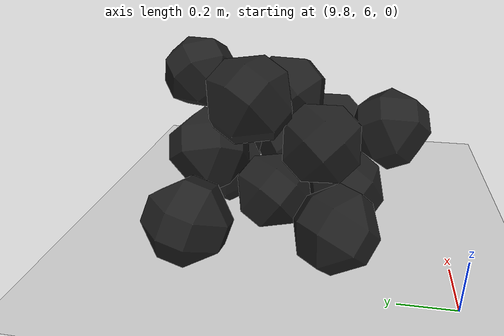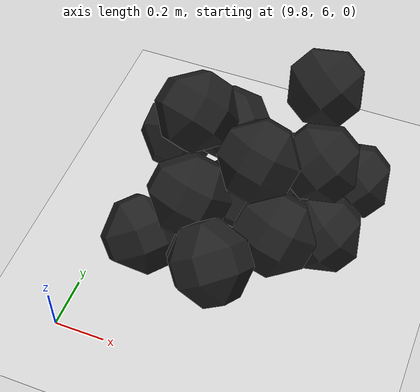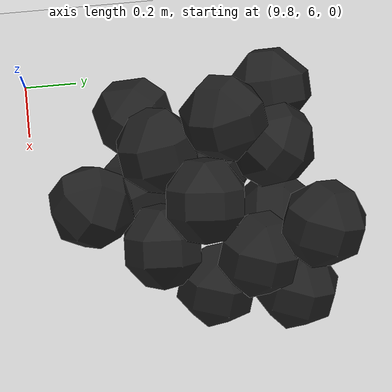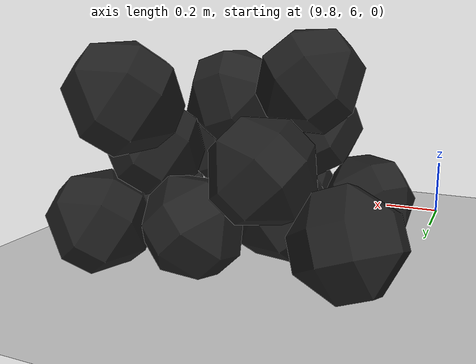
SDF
<sdf version="1.7">
 <world name="default">
  <model name="ground_plane">
   <static>1</static>
   <link name="link">
    <collision name="collision">
     <geometry><plane><normal>0 0 1</normal><size>100 100</size></plane></geometry>
     <surface><friction><ode><mu>100</mu><mu2>50</mu2></ode></friction></surface>
    </collision>
    <visual name="visual">
     <cast_shadows>0</cast_shadows>
     <geometry><plane><normal>0 0 1</normal><size>100 100</size></plane></geometry>
     <material>
      <script><uri>file://media/materials/scripts/gazebo.material</uri><name>Gazebo/Grey</name></script>
     </material>
    </visual>
   </link>
  </model>
  <model name="haoduomiantiaa_1">
   <link name="link_0">
    <inertial>
     <mass>0.2</mass>
     <inertia>
      <ixx>0.166667</ixx>
      <ixy>0</ixy>
      <ixz>0</ixz>
      <iyy>0.166667</iyy>
      <iyz>0</iyz>
      <izz>0.166667</izz>
     </inertia>
    </inertial>
    <visual name="visual">
     <geometry>
      <mesh>
       <uri>/home/lihaoyang/catkin_ws/src/pudong_gazebo/world/stl/haoduomianti.stl</uri>
       <scale>1 1 1</scale>
      </mesh>
     </geometry>
     <material>
      <lighting>1</lighting>
      <script><uri>file://media/materials/scripts/gazebo.material</uri><name>Gazebo/Black</name></script>
      <shader type="pixel"><normal_map>__default__</normal_map></shader>
      <ambient>0.3 0.3 0.3 1</ambient>
      <diffuse>0.7 0.7 0.7 1</diffuse>
      <specular>0.01 0.01 0.01 1</specular>
      <emissive>0 0 0 1</emissive>
     </material>
    </visual>
    <collision name="collision">
     <geometry>
      <mesh>
       <uri>/home/lihaoyang/catkin_ws/src/pudong_gazebo/world/stl/haoduomianti.stl</uri>
       <scale>1 1 1</scale>
      </mesh>
     </geometry>
     <surface>
      <friction>
       <ode><mu>1</mu><mu2>1</mu2><fdir1>0 0 0</fdir1><slip1>0</slip1><slip2>0</slip2></ode>
       <torsional>
        <coefficient>1</coefficient>
        <patch_radius>0</patch_radius>
        <surface_radius>0</surface_radius>
        <use_patch_radius>1</use_patch_radius>
        <ode><slip>0</slip></ode>
       </torsional>
      </friction>
      <bounce><restitution_coefficient>0</restitution_coefficient><threshold>1e+06</threshold></bounce>
      <contact>
       <collide_without_contact>0</collide_without_contact>
       <collide_without_contact_bitmask>1</collide_without_contact_bitmask>
       <collide_bitmask>1</collide_bitmask>
       <ode>
        <soft_cfm>0</soft_cfm>
        <soft_erp>0.2</soft_erp>
        <kp>1e+13</kp>
        <kd>1</kd>
        <max_vel>0.01</max_vel>
        <min_depth>0</min_depth>
       </ode>
       <bullet>
        <split_impulse>1</split_impulse>
        <split_impulse_penetration_threshold>-0.01</split_impulse_penetration_threshold>
        <soft_cfm>0</soft_cfm>
        <soft_erp>0.2</soft_erp>
        <kp>1e+13</kp>
        <kd>1</kd>
       </bullet>
      </contact>
     </surface>
    </collision>
   </link>
   <static>0</static>
   <pose>10.6585 6.68021 -0.115759 0.785362 -0.615601 0.746121</pose>
  </model>
  <model name="haoduomiantiaa_7">
   <link name="link_0">
    <inertial>
     <mass>0.2</mass>
     <inertia>
      <ixx>0.166667</ixx>
      <ixy>0</ixy>
      <ixz>0</ixz>
      <iyy>0.166667</iyy>
      <iyz>0</iyz>
      <izz>0.166667</izz>
     </inertia>
    </inertial>
    <visual name="visual">
     <geometry>
      <mesh>
       <uri>/home/lihaoyang/catkin_ws/src/pudong_gazebo/world/stl/haoduomianti.stl</uri>
       <scale>1 1 1</scale>
      </mesh>
     </geometry>
     <material>
      <lighting>1</lighting>
      <script><uri>file://media/materials/scripts/gazebo.material</uri><name>Gazebo/Black</name></script>
      <shader type="pixel"><normal_map>__default__</normal_map></shader>
      <ambient>0.3 0.3 0.3 1</ambient>
      <diffuse>0.7 0.7 0.7 1</diffuse>
      <specular>0.01 0.01 0.01 1</specular>
      <emissive>0 0 0 1</emissive>
     </material>
    </visual>
    <collision name="collision">
     <geometry>
      <mesh>
       <uri>/home/lihaoyang/catkin_ws/src/pudong_gazebo/world/stl/haoduomianti.stl</uri>
       <scale>1 1 1</scale>
      </mesh>
     </geometry>
     <surface>
      <friction>
       <ode><mu>1</mu><mu2>1</mu2><fdir1>0 0 0</fdir1><slip1>0</slip1><slip2>0</slip2></ode>
       <torsional>
        <coefficient>1</coefficient>
        <patch_radius>0</patch_radius>
        <surface_radius>0</surface_radius>
        <use_patch_radius>1</use_patch_radius>
        <ode><slip>0</slip></ode>
       </torsional>
      </friction>
      <bounce><restitution_coefficient>0</restitution_coefficient><threshold>1e+06</threshold></bounce>
      <contact>
       <collide_without_contact>0</collide_without_contact>
       <collide_without_contact_bitmask>1</collide_without_contact_bitmask>
       <collide_bitmask>1</collide_bitmask>
       <ode>
        <soft_cfm>0</soft_cfm>
        <soft_erp>0.2</soft_erp>
        <kp>1e+13</kp>
        <kd>1</kd>
        <max_vel>0.01</max_vel>
        <min_depth>0</min_depth>
       </ode>
       <bullet>
        <split_impulse>1</split_impulse>
        <split_impulse_penetration_threshold>-0.01</split_impulse_penetration_threshold>
        <soft_cfm>0</soft_cfm>
        <soft_erp>0.2</soft_erp>
        <kp>1e+13</kp>
        <kd>1</kd>
       </bullet>
      </contact>
     </surface>
    </collision>
   </link>
   <static>0</static>
   <pose>10.6943 6.98169 -0.115473 0.78544 -0.614761 -1.40075</pose>
  </model>
  <model name="haoduomiantiaa_13">
   <link name="link_0">
    <inertial>
     <mass>0.2</mass>
     <inertia>
      <ixx>0.166667</ixx>
      <ixy>0</ixy>
      <ixz>0</ixz>
      <iyy>0.166667</iyy>
      <iyz>0</iyz>
      <izz>0.166667</izz>
     </inertia>
    </inertial>
    <visual name="visual">
     <geometry>
      <mesh>
       <uri>/home/lihaoyang/catkin_ws/src/pudong_gazebo/world/stl/haoduomianti.stl</uri>
       <scale>1 1 1</scale>
      </mesh>
     </geometry>
     <material>
      <lighting>1</lighting>
      <script><uri>file://media/materials/scripts/gazebo.material</uri><name>Gazebo/Black</name></script>
      <shader type="pixel"><normal_map>__default__</normal_map></shader>
      <ambient>0.3 0.3 0.3 1</ambient>
      <diffuse>0.7 0.7 0.7 1</diffuse>
      <specular>0.01 0.01 0.01 1</specular>
      <emissive>0 0 0 1</emissive>
     </material>
    </visual>
    <collision name="collision">
     <geometry>
      <mesh>
       <uri>/home/lihaoyang/catkin_ws/src/pudong_gazebo/world/stl/haoduomianti.stl</uri>
       <scale>1 1 1</scale>
      </mesh>
     </geometry>
     <surface>
      <friction>
       <ode><mu>1</mu><mu2>1</mu2><fdir1>0 0 0</fdir1><slip1>0</slip1><slip2>0</slip2></ode>
       <torsional>
        <coefficient>1</coefficient>
        <patch_radius>0</patch_radius>
        <surface_radius>0</surface_radius>
        <use_patch_radius>1</use_patch_radius>
        <ode><slip>0</slip></ode>
       </torsional>
      </friction>
      <bounce><restitution_coefficient>0</restitution_coefficient><threshold>1e+06</threshold></bounce>
      <contact>
       <collide_without_contact>0</collide_without_contact>
       <collide_without_contact_bitmask>1</collide_without_contact_bitmask>
       <collide_bitmask>1</collide_bitmask>
       <ode>
        <soft_cfm>0</soft_cfm>
        <soft_erp>0.2</soft_erp>
        <kp>1e+13</kp>
        <kd>1</kd>
        <max_vel>0.01</max_vel>
        <min_depth>0</min_depth>
       </ode>
       <bullet>
        <split_impulse>1</split_impulse>
        <split_impulse_penetration_threshold>-0.01</split_impulse_penetration_threshold>
        <soft_cfm>0</soft_cfm>
        <soft_erp>0.2</soft_erp>
        <kp>1e+13</kp>
        <kd>1</kd>
       </bullet>
      </contact>
     </surface>
    </collision>
   </link>
   <static>0</static>
   <pose>10.385 6.82157 -0.088707 1.29906 -0.76671 -3.09241</pose>
  </model>
  <model name="haoduomiantiaa_15">
   <link name="link_0">
    <inertial>
     <mass>0.2</mass>
     <inertia>
      <ixx>0.166667</ixx>
      <ixy>0</ixy>
      <ixz>0</ixz>
      <iyy>0.166667</iyy>
      <iyz>0</iyz>
      <izz>0.166667</izz>
     </inertia>
    </inertial>
    <visual name="visual">
     <geometry>
      <mesh>
       <uri>/home/lihaoyang/catkin_ws/src/pudong_gazebo/world/stl/haoduomianti.stl</uri>
       <scale>1 1 1</scale>
      </mesh>
     </geometry>
     <material>
      <lighting>1</lighting>
      <script><uri>file://media/materials/scripts/gazebo.material</uri><name>Gazebo/Black</name></script>
      <shader type="pixel"><normal_map>__default__</normal_map></shader>
      <ambient>0.3 0.3 0.3 1</ambient>
      <diffuse>0.7 0.7 0.7 1</diffuse>
      <specular>0.01 0.01 0.01 1</specular>
      <emissive>0 0 0 1</emissive>
     </material>
    </visual>
    <collision name="collision">
     <geometry>
      <mesh>
       <uri>/home/lihaoyang/catkin_ws/src/pudong_gazebo/world/stl/haoduomianti.stl</uri>
       <scale>1 1 1</scale>
      </mesh>
     </geometry>
     <surface>
      <friction>
       <ode><mu>1</mu><mu2>1</mu2><fdir1>0 0 0</fdir1><slip1>0</slip1><slip2>0</slip2></ode>
       <torsional>
        <coefficient>1</coefficient>
        <patch_radius>0</patch_radius>
        <surface_radius>0</surface_radius>
        <use_patch_radius>1</use_patch_radius>
        <ode><slip>0</slip></ode>
       </torsional>
      </friction>
      <bounce><restitution_coefficient>0</restitution_coefficient><threshold>1e+06</threshold></bounce>
      <contact>
       <collide_without_contact>0</collide_without_contact>
       <collide_without_contact_bitmask>1</collide_without_contact_bitmask>
       <collide_bitmask>1</collide_bitmask>
       <ode>
        <soft_cfm>0</soft_cfm>
        <soft_erp>0.2</soft_erp>
        <kp>1e+13</kp>
        <kd>1</kd>
        <max_vel>0.01</max_vel>
        <min_depth>0</min_depth>
       </ode>
       <bullet>
        <split_impulse>1</split_impulse>
        <split_impulse_penetration_threshold>-0.01</split_impulse_penetration_threshold>
        <soft_cfm>0</soft_cfm>
        <soft_erp>0.2</soft_erp>
        <kp>1e+13</kp>
        <kd>1</kd>
       </bullet>
      </contact>
     </surface>
    </collision>
   </link>
   <static>0</static>
   <pose>10.5889 6.84123 0.108758 0.77447 -0.630052 0.728351</pose>
  </model>
  <model name="haoduomiantiaa_33">
   <link name="link_0">
    <inertial>
     <mass>0.2</mass>
     <inertia>
      <ixx>0.166667</ixx>
      <ixy>0</ixy>
      <ixz>0</ixz>
      <iyy>0.166667</iyy>
      <iyz>0</iyz>
      <izz>0.166667</izz>
     </inertia>
    </inertial>
    <visual name="visual">
     <geometry>
      <mesh>
       <uri>/home/lihaoyang/catkin_ws/src/pudong_gazebo/world/stl/haoduomianti.stl</uri>
       <scale>1 1 1</scale>
      </mesh>
     </geometry>
     <material>
      <lighting>1</lighting>
      <script><uri>file://media/materials/scripts/gazebo.material</uri><name>Gazebo/Black</name></script>
      <shader type="pixel"><normal_map>__default__</normal_map></shader>
      <ambient>0.3 0.3 0.3 1</ambient>
      <diffuse>0.7 0.7 0.7 1</diffuse>
      <specular>0.01 0.01 0.01 1</specular>
      <emissive>0 0 0 1</emissive>
     </material>
    </visual>
    <collision name="collision">
     <geometry>
      <mesh>
       <uri>/home/lihaoyang/catkin_ws/src/pudong_gazebo/world/stl/haoduomianti.stl</uri>
       <scale>1 1 1</scale>
      </mesh>
     </geometry>
     <surface>
      <friction>
       <ode><mu>1</mu><mu2>1</mu2><fdir1>0 0 0</fdir1><slip1>0</slip1><slip2>0</slip2></ode>
       <torsional>
        <coefficient>1</coefficient>
        <patch_radius>0</patch_radius>
        <surface_radius>0</surface_radius>
        <use_patch_radius>1</use_patch_radius>
        <ode><slip>0</slip></ode>
       </torsional>
      </friction>
      <bounce><restitution_coefficient>0</restitution_coefficient><threshold>1e+06</threshold></bounce>
      <contact>
       <collide_without_contact>0</collide_without_contact>
       <collide_without_contact_bitmask>1</collide_without_contact_bitmask>
       <collide_bitmask>1</collide_bitmask>
       <ode>
        <soft_cfm>0</soft_cfm>
        <soft_erp>0.2</soft_erp>
        <kp>1e+13</kp>
        <kd>1</kd>
        <max_vel>0.01</max_vel>
        <min_depth>0</min_depth>
       </ode>
       <bullet>
        <split_impulse>1</split_impulse>
        <split_impulse_penetration_threshold>-0.01</split_impulse_penetration_threshold>
        <soft_cfm>0</soft_cfm>
        <soft_erp>0.2</soft_erp>
        <kp>1e+13</kp>
        <kd>1</kd>
       </bullet>
      </contact>
     </surface>
    </collision>
   </link>
   <static>0</static>
   <pose>10.2142 6.68788 -0.115193 0.77826 -0.61882 1.39041</pose>
  </model>
  <model name="haoduomiantiaa_34">
   <link name="link_0">
    <inertial>
     <mass>0.2</mass>
     <inertia>
      <ixx>0.166667</ixx>
      <ixy>0</ixy>
      <ixz>0</ixz>
      <iyy>0.166667</iyy>
      <iyz>0</iyz>
      <izz>0.166667</izz>
     </inertia>
    </inertial>
    <visual name="visual">
     <geometry>
      <mesh>
       <uri>/home/lihaoyang/catkin_ws/src/pudong_gazebo/world/stl/haoduomianti.stl</uri>
       <scale>1 1 1</scale>
      </mesh>
     </geometry>
     <material>
      <lighting>1</lighting>
      <script><uri>file://media/materials/scripts/gazebo.material</uri><name>Gazebo/Black</name></script>
      <shader type="pixel"><normal_map>__default__</normal_map></shader>
      <ambient>0.3 0.3 0.3 1</ambient>
      <diffuse>0.7 0.7 0.7 1</diffuse>
      <specular>0.01 0.01 0.01 1</specular>
      <emissive>0 0 0 1</emissive>
     </material>
    </visual>
    <collision name="collision">
     <geometry>
      <mesh>
       <uri>/home/lihaoyang/catkin_ws/src/pudong_gazebo/world/stl/haoduomianti.stl</uri>
       <scale>1 1 1</scale>
      </mesh>
     </geometry>
     <surface>
      <friction>
       <ode><mu>1</mu><mu2>1</mu2><fdir1>0 0 0</fdir1><slip1>0</slip1><slip2>0</slip2></ode>
       <torsional>
        <coefficient>1</coefficient>
        <patch_radius>0</patch_radius>
        <surface_radius>0</surface_radius>
        <use_patch_radius>1</use_patch_radius>
        <ode><slip>0</slip></ode>
       </torsional>
      </friction>
      <bounce><restitution_coefficient>0</restitution_coefficient><threshold>1e+06</threshold></bounce>
      <contact>
       <collide_without_contact>0</collide_without_contact>
       <collide_without_contact_bitmask>1</collide_without_contact_bitmask>
       <collide_bitmask>1</collide_bitmask>
       <ode>
        <soft_cfm>0</soft_cfm>
        <soft_erp>0.2</soft_erp>
        <kp>1e+13</kp>
        <kd>1</kd>
        <max_vel>0.01</max_vel>
        <min_depth>0</min_depth>
       </ode>
       <bullet>
        <split_impulse>1</split_impulse>
        <split_impulse_penetration_threshold>-0.01</split_impulse_penetration_threshold>
        <soft_cfm>0</soft_cfm>
        <soft_erp>0.2</soft_erp>
        <kp>1e+13</kp>
        <kd>1</kd>
       </bullet>
      </contact>
     </surface>
    </collision>
   </link>
   <static>0</static>
   <pose>10.2788 6.39914 -0.115408 0.783199 -0.616509 -0.706646</pose>
  </model>
  <model name="haoduomiantiaa_35">
   <link name="link_0">
    <inertial>
     <mass>0.2</mass>
     <inertia>
      <ixx>0.166667</ixx>
      <ixy>0</ixy>
      <ixz>0</ixz>
      <iyy>0.166667</iyy>
      <iyz>0</iyz>
      <izz>0.166667</izz>
     </inertia>
    </inertial>
    <visual name="visual">
     <geometry>
      <mesh>
       <uri>/home/lihaoyang/catkin_ws/src/pudong_gazebo/world/stl/haoduomianti.stl</uri>
       <scale>1 1 1</scale>
      </mesh>
     </geometry>
     <material>
      <lighting>1</lighting>
      <script><uri>file://media/materials/scripts/gazebo.material</uri><name>Gazebo/Black</name></script>
      <shader type="pixel"><normal_map>__default__</normal_map></shader>
      <ambient>0.3 0.3 0.3 1</ambient>
      <diffuse>0.7 0.7 0.7 1</diffuse>
      <specular>0.01 0.01 0.01 1</specular>
      <emissive>0 0 0 1</emissive>
     </material>
    </visual>
    <collision name="collision">
     <geometry>
      <mesh>
       <uri>/home/lihaoyang/catkin_ws/src/pudong_gazebo/world/stl/haoduomianti.stl</uri>
       <scale>1 1 1</scale>
      </mesh>
     </geometry>
     <surface>
      <friction>
       <ode><mu>1</mu><mu2>1</mu2><fdir1>0 0 0</fdir1><slip1>0</slip1><slip2>0</slip2></ode>
       <torsional>
        <coefficient>1</coefficient>
        <patch_radius>0</patch_radius>
        <surface_radius>0</surface_radius>
        <use_patch_radius>1</use_patch_radius>
        <ode><slip>0</slip></ode>
       </torsional>
      </friction>
      <bounce><restitution_coefficient>0</restitution_coefficient><threshold>1e+06</threshold></bounce>
      <contact>
       <collide_without_contact>0</collide_without_contact>
       <collide_without_contact_bitmask>1</collide_without_contact_bitmask>
       <collide_bitmask>1</collide_bitmask>
       <ode>
        <soft_cfm>0</soft_cfm>
        <soft_erp>0.2</soft_erp>
        <kp>1e+13</kp>
        <kd>1</kd>
        <max_vel>0.01</max_vel>
        <min_depth>0</min_depth>
       </ode>
       <bullet>
        <split_impulse>1</split_impulse>
        <split_impulse_penetration_threshold>-0.01</split_impulse_penetration_threshold>
        <soft_cfm>0</soft_cfm>
        <soft_erp>0.2</soft_erp>
        <kp>1e+13</kp>
        <kd>1</kd>
       </bullet>
      </contact>
     </surface>
    </collision>
   </link>
   <static>0</static>
   <pose>10.0079 6.86082 -0.064572 0.757573 -1.09802 -0.753418</pose>
  </model>
  <model name="haoduomiantiaa_52">
   <link name="link_0">
    <inertial>
     <mass>0.2</mass>
     <inertia>
      <ixx>0.166667</ixx>
      <ixy>0</ixy>
      <ixz>0</ixz>
      <iyy>0.166667</iyy>
      <iyz>0</iyz>
      <izz>0.166667</izz>
     </inertia>
    </inertial>
    <visual name="visual">
     <geometry>
      <mesh>
       <uri>/home/lihaoyang/catkin_ws/src/pudong_gazebo/world/stl/haoduomianti.stl</uri>
       <scale>1 1 1</scale>
      </mesh>
     </geometry>
     <material>
      <lighting>1</lighting>
      <script><uri>file://media/materials/scripts/gazebo.material</uri><name>Gazebo/Black</name></script>
      <shader type="pixel"><normal_map>__default__</normal_map></shader>
      <ambient>0.3 0.3 0.3 1</ambient>
      <diffuse>0.7 0.7 0.7 1</diffuse>
      <specular>0.01 0.01 0.01 1</specular>
      <emissive>0 0 0 1</emissive>
     </material>
    </visual>
    <collision name="collision">
     <geometry>
      <mesh>
       <uri>/home/lihaoyang/catkin_ws/src/pudong_gazebo/world/stl/haoduomianti.stl</uri>
       <scale>1 1 1</scale>
      </mesh>
     </geometry>
     <surface>
      <friction>
       <ode><mu>1</mu><mu2>1</mu2><fdir1>0 0 0</fdir1><slip1>0</slip1><slip2>0</slip2></ode>
       <torsional>
        <coefficient>1</coefficient>
        <patch_radius>0</patch_radius>
        <surface_radius>0</surface_radius>
        <use_patch_radius>1</use_patch_radius>
        <ode><slip>0</slip></ode>
       </torsional>
      </friction>
      <bounce><restitution_coefficient>0</restitution_coefficient><threshold>1e+06</threshold></bounce>
      <contact>
       <collide_without_contact>0</collide_without_contact>
       <collide_without_contact_bitmask>1</collide_without_contact_bitmask>
       <collide_bitmask>1</collide_bitmask>
       <ode>
        <soft_cfm>0</soft_cfm>
        <soft_erp>0.2</soft_erp>
        <kp>1e+13</kp>
        <kd>1</kd>
        <max_vel>0.01</max_vel>
        <min_depth>0</min_depth>
       </ode>
       <bullet>
        <split_impulse>1</split_impulse>
        <split_impulse_penetration_threshold>-0.01</split_impulse_penetration_threshold>
        <soft_cfm>0</soft_cfm>
        <soft_erp>0.2</soft_erp>
        <kp>1e+13</kp>
        <kd>1</kd>
       </bullet>
      </contact>
     </surface>
    </collision>
   </link>
   <static>0</static>
   <pose>10.083 6.53339 -0.071379 0.010082 -0.785347 2.44092</pose>
  </model>
  <model name="haoduomiantiaa_63">
   <link name="link_0">
    <inertial>
     <mass>0.2</mass>
     <inertia>
      <ixx>0.166667</ixx>
      <ixy>0</ixy>
      <ixz>0</ixz>
      <iyy>0.166667</iyy>
      <iyz>0</iyz>
      <izz>0.166667</izz>
     </inertia>
    </inertial>
    <visual name="visual">
     <geometry>
      <mesh>
       <uri>/home/lihaoyang/catkin_ws/src/pudong_gazebo/world/stl/haoduomianti.stl</uri>
       <scale>1 1 1</scale>
      </mesh>
     </geometry>
     <material>
      <lighting>1</lighting>
      <script><uri>file://media/materials/scripts/gazebo.material</uri><name>Gazebo/Black</name></script>
      <shader type="pixel"><normal_map>__default__</normal_map></shader>
      <ambient>0.3 0.3 0.3 1</ambient>
      <diffuse>0.7 0.7 0.7 1</diffuse>
      <specular>0.01 0.01 0.01 1</specular>
      <emissive>0 0 0 1</emissive>
     </material>
    </visual>
    <collision name="collision">
     <geometry>
      <mesh>
       <uri>/home/lihaoyang/catkin_ws/src/pudong_gazebo/world/stl/haoduomianti.stl</uri>
       <scale>1 1 1</scale>
      </mesh>
     </geometry>
     <surface>
      <friction>
       <ode><mu>1</mu><mu2>1</mu2><fdir1>0 0 0</fdir1><slip1>0</slip1><slip2>0</slip2></ode>
       <torsional>
        <coefficient>1</coefficient>
        <patch_radius>0</patch_radius>
        <surface_radius>0</surface_radius>
        <use_patch_radius>1</use_patch_radius>
        <ode><slip>0</slip></ode>
       </torsional>
      </friction>
      <bounce><restitution_coefficient>0</restitution_coefficient><threshold>1e+06</threshold></bounce>
      <contact>
       <collide_without_contact>0</collide_without_contact>
       <collide_without_contact_bitmask>1</collide_without_contact_bitmask>
       <collide_bitmask>1</collide_bitmask>
       <ode>
        <soft_cfm>0</soft_cfm>
        <soft_erp>0.2</soft_erp>
        <kp>1e+13</kp>
        <kd>1</kd>
        <max_vel>0.01</max_vel>
        <min_depth>0</min_depth>
       </ode>
       <bullet>
        <split_impulse>1</split_impulse>
        <split_impulse_penetration_threshold>-0.01</split_impulse_penetration_threshold>
        <soft_cfm>0</soft_cfm>
        <soft_erp>0.2</soft_erp>
        <kp>1e+13</kp>
        <kd>1</kd>
       </bullet>
      </contact>
     </surface>
    </collision>
   </link>
   <static>0</static>
   <pose>10.3586 6.25994 0.13072 0.712516 -0.683507 2.29706</pose>
  </model>
  <model name="haoduomiantiaa_87">
   <link name="link_0">
    <inertial>
     <mass>0.2</mass>
     <inertia>
      <ixx>0.166667</ixx>
      <ixy>0</ixy>
      <ixz>0</ixz>
      <iyy>0.166667</iyy>
      <iyz>0</iyz>
      <izz>0.166667</izz>
     </inertia>
    </inertial>
    <visual name="visual">
     <geometry>
      <mesh>
       <uri>/home/lihaoyang/catkin_ws/src/pudong_gazebo/world/stl/haoduomianti.stl</uri>
       <scale>1 1 1</scale>
      </mesh>
     </geometry>
     <material>
      <lighting>1</lighting>
      <script><uri>file://media/materials/scripts/gazebo.material</uri><name>Gazebo/Black</name></script>
      <shader type="pixel"><normal_map>__default__</normal_map></shader>
      <ambient>0.3 0.3 0.3 1</ambient>
      <diffuse>0.7 0.7 0.7 1</diffuse>
      <specular>0.01 0.01 0.01 1</specular>
      <emissive>0 0 0 1</emissive>
     </material>
    </visual>
    <collision name="collision">
     <geometry>
      <mesh>
       <uri>/home/lihaoyang/catkin_ws/src/pudong_gazebo/world/stl/haoduomianti.stl</uri>
       <scale>1 1 1</scale>
      </mesh>
     </geometry>
     <surface>
      <friction>
       <ode><mu>1</mu><mu2>1</mu2><fdir1>0 0 0</fdir1><slip1>0</slip1><slip2>0</slip2></ode>
       <torsional>
        <coefficient>1</coefficient>
        <patch_radius>0</patch_radius>
        <surface_radius>0</surface_radius>
        <use_patch_radius>1</use_patch_radius>
        <ode><slip>0</slip></ode>
       </torsional>
      </friction>
      <bounce><restitution_coefficient>0</restitution_coefficient><threshold>1e+06</threshold></bounce>
      <contact>
       <collide_without_contact>0</collide_without_contact>
       <collide_without_contact_bitmask>1</collide_without_contact_bitmask>
       <collide_bitmask>1</collide_bitmask>
       <ode>
        <soft_cfm>0</soft_cfm>
        <soft_erp>0.2</soft_erp>
        <kp>1e+13</kp>
        <kd>1</kd>
        <max_vel>0.01</max_vel>
        <min_depth>0</min_depth>
       </ode>
       <bullet>
        <split_impulse>1</split_impulse>
        <split_impulse_penetration_threshold>-0.01</split_impulse_penetration_threshold>
        <soft_cfm>0</soft_cfm>
        <soft_erp>0.2</soft_erp>
        <kp>1e+13</kp>
        <kd>1</kd>
       </bullet>
      </contact>
     </surface>
    </collision>
   </link>
   <static>0</static>
   <pose>10.5873 6.48229 0.067726 0.788559 -0.344806 3.10003</pose>
  </model>
  <model name="haoduomiantiaa_98">
   <link name="link_0">
    <inertial>
     <mass>0.2</mass>
     <inertia>
      <ixx>0.166667</ixx>
      <ixy>0</ixy>
      <ixz>0</ixz>
      <iyy>0.166667</iyy>
      <iyz>0</iyz>
      <izz>0.166667</izz>
     </inertia>
    </inertial>
    <visual name="visual">
     <geometry>
      <mesh>
       <uri>/home/lihaoyang/catkin_ws/src/pudong_gazebo/world/stl/haoduomianti.stl</uri>
       <scale>1 1 1</scale>
      </mesh>
     </geometry>
     <material>
      <lighting>1</lighting>
      <script><uri>file://media/materials/scripts/gazebo.material</uri><name>Gazebo/Black</name></script>
      <shader type="pixel"><normal_map>__default__</normal_map></shader>
      <ambient>0.3 0.3 0.3 1</ambient>
      <diffuse>0.7 0.7 0.7 1</diffuse>
      <specular>0.01 0.01 0.01 1</specular>
      <emissive>0 0 0 1</emissive>
     </material>
    </visual>
    <collision name="collision">
     <geometry>
      <mesh>
       <uri>/home/lihaoyang/catkin_ws/src/pudong_gazebo/world/stl/haoduomianti.stl</uri>
       <scale>1 1 1</scale>
      </mesh>
     </geometry>
     <surface>
      <friction>
       <ode><mu>1</mu><mu2>1</mu2><fdir1>0 0 0</fdir1><slip1>0</slip1><slip2>0</slip2></ode>
       <torsional>
        <coefficient>1</coefficient>
        <patch_radius>0</patch_radius>
        <surface_radius>0</surface_radius>
        <use_patch_radius>1</use_patch_radius>
        <ode><slip>0</slip></ode>
       </torsional>
      </friction>
      <bounce><restitution_coefficient>0</restitution_coefficient><threshold>1e+06</threshold></bounce>
      <contact>
       <collide_without_contact>0</collide_without_contact>
       <collide_without_contact_bitmask>1</collide_without_contact_bitmask>
       <collide_bitmask>1</collide_bitmask>
       <ode>
        <soft_cfm>0</soft_cfm>
        <soft_erp>0.2</soft_erp>
        <kp>1e+13</kp>
        <kd>1</kd>
        <max_vel>0.01</max_vel>
        <min_depth>0</min_depth>
       </ode>
       <bullet>
        <split_impulse>1</split_impulse>
        <split_impulse_penetration_threshold>-0.01</split_impulse_penetration_threshold>
        <soft_cfm>0</soft_cfm>
        <soft_erp>0.2</soft_erp>
        <kp>1e+13</kp>
        <kd>1</kd>
       </bullet>
      </contact>
     </surface>
    </collision>
   </link>
   <static>0</static>
   <pose>10.2254 6.9095 0.081141 0.617176 -0.790107 0.283606</pose>
  </model>
  <model name="haoduomiantiaa_106">
   <link name="link_0">
    <inertial>
     <mass>0.2</mass>
     <inertia>
      <ixx>0.166667</ixx>
      <ixy>0</ixy>
      <ixz>0</ixz>
      <iyy>0.166667</iyy>
      <iyz>0</iyz>
      <izz>0.166667</izz>
     </inertia>
    </inertial>
    <visual name="visual">
     <geometry>
      <mesh>
       <uri>/home/lihaoyang/catkin_ws/src/pudong_gazebo/world/stl/haoduomianti.stl</uri>
       <scale>1 1 1</scale>
      </mesh>
     </geometry>
     <material>
      <lighting>1</lighting>
      <script><uri>file://media/materials/scripts/gazebo.material</uri><name>Gazebo/Black</name></script>
      <shader type="pixel"><normal_map>__default__</normal_map></shader>
      <ambient>0.3 0.3 0.3 1</ambient>
      <diffuse>0.7 0.7 0.7 1</diffuse>
      <specular>0.01 0.01 0.01 1</specular>
      <emissive>0 0 0 1</emissive>
     </material>
    </visual>
    <collision name="collision">
     <geometry>
      <mesh>
       <uri>/home/lihaoyang/catkin_ws/src/pudong_gazebo/world/stl/haoduomianti.stl</uri>
       <scale>1 1 1</scale>
      </mesh>
     </geometry>
     <surface>
      <friction>
       <ode><mu>1</mu><mu2>1</mu2><fdir1>0 0 0</fdir1><slip1>0</slip1><slip2>0</slip2></ode>
       <torsional>
        <coefficient>1</coefficient>
        <patch_radius>0</patch_radius>
        <surface_radius>0</surface_radius>
        <use_patch_radius>1</use_patch_radius>
        <ode><slip>0</slip></ode>
       </torsional>
      </friction>
      <bounce><restitution_coefficient>0</restitution_coefficient><threshold>1e+06</threshold></bounce>
      <contact>
       <collide_without_contact>0</collide_without_contact>
       <collide_without_contact_bitmask>1</collide_without_contact_bitmask>
       <collide_bitmask>1</collide_bitmask>
       <ode>
        <soft_cfm>0</soft_cfm>
        <soft_erp>0.2</soft_erp>
        <kp>1e+13</kp>
        <kd>1</kd>
        <max_vel>0.01</max_vel>
        <min_depth>0</min_depth>
       </ode>
       <bullet>
        <split_impulse>1</split_impulse>
        <split_impulse_penetration_threshold>-0.01</split_impulse_penetration_threshold>
        <soft_cfm>0</soft_cfm>
        <soft_erp>0.2</soft_erp>
        <kp>1e+13</kp>
        <kd>1</kd>
       </bullet>
      </contact>
     </surface>
    </collision>
   </link>
   <static>0</static>
   <pose>10.1986 6.512 0.132309 0.671928 -0.716009 1.25347</pose>
  </model>
  <model name="haoduomiantiaa_116">
   <link name="link_0">
    <inertial>
     <mass>0.2</mass>
     <inertia>
      <ixx>0.166667</ixx>
      <ixy>0</ixy>
      <ixz>0</ixz>
      <iyy>0.166667</iyy>
      <iyz>0</iyz>
      <izz>0.166667</izz>
     </inertia>
    </inertial>
    <visual name="visual">
     <geometry>
      <mesh>
       <uri>/home/lihaoyang/catkin_ws/src/pudong_gazebo/world/stl/haoduomianti.stl</uri>
       <scale>1 1 1</scale>
      </mesh>
     </geometry>
     <material>
      <lighting>1</lighting>
      <script><uri>file://media/materials/scripts/gazebo.material</uri><name>Gazebo/Black</name></script>
      <shader type="pixel"><normal_map>__default__</normal_map></shader>
      <ambient>0.3 0.3 0.3 1</ambient>
      <diffuse>0.7 0.7 0.7 1</diffuse>
      <specular>0.01 0.01 0.01 1</specular>
      <emissive>0 0 0 1</emissive>
     </material>
    </visual>
    <collision name="collision">
     <geometry>
      <mesh>
       <uri>/home/lihaoyang/catkin_ws/src/pudong_gazebo/world/stl/haoduomianti.stl</uri>
       <scale>1 1 1</scale>
      </mesh>
     </geometry>
     <surface>
      <friction>
       <ode><mu>1</mu><mu2>1</mu2><fdir1>0 0 0</fdir1><slip1>0</slip1><slip2>0</slip2></ode>
       <torsional>
        <coefficient>1</coefficient>
        <patch_radius>0</patch_radius>
        <surface_radius>0</surface_radius>
        <use_patch_radius>1</use_patch_radius>
        <ode><slip>0</slip></ode>
       </torsional>
      </friction>
      <bounce><restitution_coefficient>0</restitution_coefficient><threshold>1e+06</threshold></bounce>
      <contact>
       <collide_without_contact>0</collide_without_contact>
       <collide_without_contact_bitmask>1</collide_without_contact_bitmask>
       <collide_bitmask>1</collide_bitmask>
       <ode>
        <soft_cfm>0</soft_cfm>
        <soft_erp>0.2</soft_erp>
        <kp>1e+13</kp>
        <kd>1</kd>
        <max_vel>0.01</max_vel>
        <min_depth>0</min_depth>
       </ode>
       <bullet>
        <split_impulse>1</split_impulse>
        <split_impulse_penetration_threshold>-0.01</split_impulse_penetration_threshold>
        <soft_cfm>0</soft_cfm>
        <soft_erp>0.2</soft_erp>
        <kp>1e+13</kp>
        <kd>1</kd>
       </bullet>
      </contact>
     </surface>
    </collision>
   </link>
   <static>0</static>
   <pose>10.0935 6.72396 0.315022 0.675669 -0.646715 -0.729321</pose>
  </model>
  <model name="haoduomiantiaa_125">
   <link name="link_0">
    <inertial>
     <mass>0.2</mass>
     <inertia>
      <ixx>0.166667</ixx>
      <ixy>0</ixy>
      <ixz>0</ixz>
      <iyy>0.166667</iyy>
      <iyz>0</iyz>
      <izz>0.166667</izz>
     </inertia>
    </inertial>
    <visual name="visual">
     <geometry>
      <mesh>
       <uri>/home/lihaoyang/catkin_ws/src/pudong_gazebo/world/stl/haoduomianti.stl</uri>
       <scale>1 1 1</scale>
      </mesh>
     </geometry>
     <material>
      <lighting>1</lighting>
      <script><uri>file://media/materials/scripts/gazebo.material</uri><name>Gazebo/Black</name></script>
      <shader type="pixel"><normal_map>__default__</normal_map></shader>
      <ambient>0.3 0.3 0.3 1</ambient>
      <diffuse>0.7 0.7 0.7 1</diffuse>
      <specular>0.01 0.01 0.01 1</specular>
      <emissive>0 0 0 1</emissive>
     </material>
    </visual>
    <collision name="collision">
     <geometry>
      <mesh>
       <uri>/home/lihaoyang/catkin_ws/src/pudong_gazebo/world/stl/haoduomianti.stl</uri>
       <scale>1 1 1</scale>
      </mesh>
     </geometry>
     <surface>
      <friction>
       <ode><mu>1</mu><mu2>1</mu2><fdir1>0 0 0</fdir1><slip1>0</slip1><slip2>0</slip2></ode>
       <torsional>
        <coefficient>1</coefficient>
        <patch_radius>0</patch_radius>
        <surface_radius>0</surface_radius>
        <use_patch_radius>1</use_patch_radius>
        <ode><slip>0</slip></ode>
       </torsional>
      </friction>
      <bounce><restitution_coefficient>0</restitution_coefficient><threshold>1e+06</threshold></bounce>
      <contact>
       <collide_without_contact>0</collide_without_contact>
       <collide_without_contact_bitmask>1</collide_without_contact_bitmask>
       <collide_bitmask>1</collide_bitmask>
       <ode>
        <soft_cfm>0</soft_cfm>
        <soft_erp>0.2</soft_erp>
        <kp>1e+13</kp>
        <kd>1</kd>
        <max_vel>0.01</max_vel>
        <min_depth>0</min_depth>
       </ode>
       <bullet>
        <split_impulse>1</split_impulse>
        <split_impulse_penetration_threshold>-0.01</split_impulse_penetration_threshold>
        <soft_cfm>0</soft_cfm>
        <soft_erp>0.2</soft_erp>
        <kp>1e+13</kp>
        <kd>1</kd>
       </bullet>
      </contact>
     </surface>
    </collision>
   </link>
   <static>0</static>
   <pose>10.4647 6.65572 0.257243 0.448866 -0.756632 1.18471</pose>
  </model>
  <model name="haoduomiantiaa_126">
   <link name="link_0">
    <inertial>
     <mass>0.2</mass>
     <inertia>
      <ixx>0.166667</ixx>
      <ixy>0</ixy>
      <ixz>0</ixz>
      <iyy>0.166667</iyy>
      <iyz>0</iyz>
      <izz>0.166667</izz>
     </inertia>
    </inertial>
    <visual name="visual">
     <geometry>
      <mesh>
       <uri>/home/lihaoyang/catkin_ws/src/pudong_gazebo/world/stl/haoduomianti.stl</uri>
       <scale>1 1 1</scale>
      </mesh>
     </geometry>
     <material>
      <lighting>1</lighting>
      <script><uri>file://media/materials/scripts/gazebo.material</uri><name>Gazebo/Black</name></script>
      <shader type="pixel"><normal_map>__default__</normal_map></shader>
      <ambient>0.3 0.3 0.3 1</ambient>
      <diffuse>0.7 0.7 0.7 1</diffuse>
      <specular>0.01 0.01 0.01 1</specular>
      <emissive>0 0 0 1</emissive>
     </material>
    </visual>
    <collision name="collision">
     <geometry>
      <mesh>
       <uri>/home/lihaoyang/catkin_ws/src/pudong_gazebo/world/stl/haoduomianti.stl</uri>
       <scale>1 1 1</scale>
      </mesh>
     </geometry>
     <surface>
      <friction>
       <ode><mu>1</mu><mu2>1</mu2><fdir1>0 0 0</fdir1><slip1>0</slip1><slip2>0</slip2></ode>
       <torsional>
        <coefficient>1</coefficient>
        <patch_radius>0</patch_radius>
        <surface_radius>0</surface_radius>
        <use_patch_radius>1</use_patch_radius>
        <ode><slip>0</slip></ode>
       </torsional>
      </friction>
      <bounce><restitution_coefficient>0</restitution_coefficient><threshold>1e+06</threshold></bounce>
      <contact>
       <collide_without_contact>0</collide_without_contact>
       <collide_without_contact_bitmask>1</collide_without_contact_bitmask>
       <collide_bitmask>1</collide_bitmask>
       <ode>
        <soft_cfm>0</soft_cfm>
        <soft_erp>0.2</soft_erp>
        <kp>1e+13</kp>
        <kd>1</kd>
        <max_vel>0.01</max_vel>
        <min_depth>0</min_depth>
       </ode>
       <bullet>
        <split_impulse>1</split_impulse>
        <split_impulse_penetration_threshold>-0.01</split_impulse_penetration_threshold>
        <soft_cfm>0</soft_cfm>
        <soft_erp>0.2</soft_erp>
        <kp>1e+13</kp>
        <kd>1</kd>
       </bullet>
      </contact>
     </surface>
    </collision>
   </link>
   <static>0</static>
   <pose>10.5294 7.05791 0.281288 0.689559 -0.613242 0.748869</pose>
  </model>
 </world>
</sdf>
